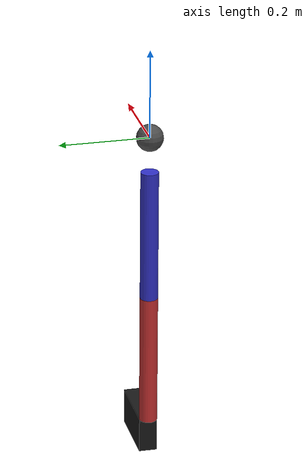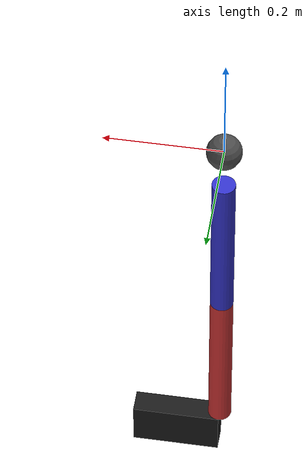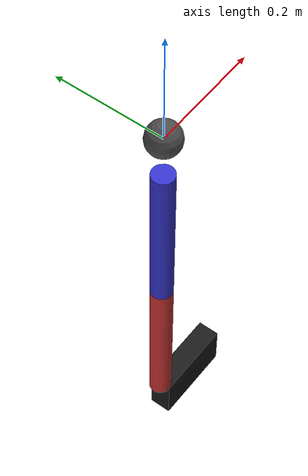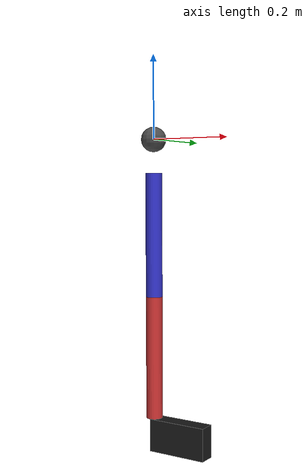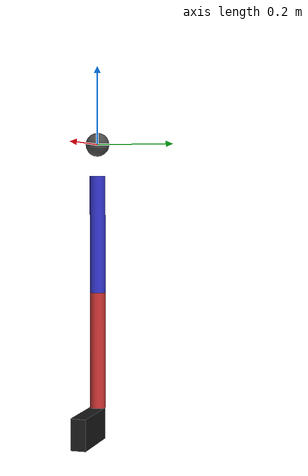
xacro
<?xml version="1.0" ?>
<!-- Copyright (c) 2025 Physical AI Course
     License: MIT
     Target: NVIDIA Jetson Orin Nano - ROS 2 Humble
-->
<robot name="humanoid_leg" xmlns:xacro="http://www.ros.org/wiki/xacro">

  <!-- Configurable parameters for leg -->
  <xacro:arg name="leg_side" default="right"/>

  <xacro:property name="leg_side" value="$(arg leg_side)"/>

  <!-- Leg dimensions (in meters) -->
  <xacro:property name="hip_length" value="0.08"/>
  <xacro:property name="thigh_length" value="0.3"/>
  <xacro:property name="calf_length" value="0.3"/>
  <xacro:property name="foot_length" value="0.15"/>
  <xacro:property name="foot_width" value="0.08"/>

  <xacro:property name="segment_radius" value="0.02"/>

  <!-- Mass distribution -->
  <xacro:property name="hip_mass" value="0.5"/>
  <xacro:property name="thigh_mass" value="1.5"/>
  <xacro:property name="calf_mass" value="1.0"/>
  <xacro:property name="foot_mass" value="0.5"/>

  <!-- Hip (pelvis connection point) -->
  <link name="hip_${leg_side}">
    <inertial>
      <mass value="${hip_mass}"/>
      <origin xyz="0 0 0"/>
      <inertia ixx="0.005" ixy="0" ixz="0" iyy="0.005" iyz="0" izz="0.003"/>
    </inertial>
    <visual>
      <origin xyz="0 0 0"/>
      <geometry>
        <sphere radius="${segment_radius * 1.5}"/>
      </geometry>
      <material name="hip_material">
        <color rgba="0.3 0.3 0.3 1.0"/>
      </material>
    </visual>
    <collision>
      <origin xyz="0 0 0"/>
      <geometry>
        <sphere radius="${segment_radius * 1.5}"/>
      </geometry>
    </collision>
  </link>

  <!-- Hip-knee joint -->
  <joint name="hip_knee_${leg_side}" type="revolute">
    <parent link="hip_${leg_side}"/>
    <child link="thigh_${leg_side}"/>
    <origin xyz="0 0 -${hip_length}" rpy="0 0 0"/>
    <axis xyz="1 0 0"/>
    <limit lower="-1.5708" upper="1.5708" effort="50" velocity="2"/>
    <dynamics damping="0.5" friction="0.0"/>
  </joint>

  <!-- Thigh -->
  <link name="thigh_${leg_side}">
    <inertial>
      <mass value="${thigh_mass}"/>
      <origin xyz="0 0 -${thigh_length/2}"/>
      <inertia ixx="0.02" ixy="0" ixz="0" iyy="0.02" iyz="0" izz="0.002"/>
    </inertial>
    <visual>
      <origin xyz="0 0 -${thigh_length/2}"/>
      <geometry>
        <cylinder radius="${segment_radius}" length="${thigh_length}"/>
      </geometry>
      <material name="thigh_material">
        <color rgba="0.2 0.2 0.8 1.0"/>
      </material>
    </visual>
    <collision>
      <origin xyz="0 0 -${thigh_length/2}"/>
      <geometry>
        <cylinder radius="${segment_radius}" length="${thigh_length}"/>
      </geometry>
    </collision>
  </link>

  <!-- Knee joint -->
  <joint name="knee_ankle_${leg_side}" type="revolute">
    <parent link="thigh_${leg_side}"/>
    <child link="calf_${leg_side}"/>
    <origin xyz="0 0 -${thigh_length}" rpy="0 0 0"/>
    <axis xyz="1 0 0"/>
    <limit lower="0" upper="2.5" effort="50" velocity="2"/>
    <dynamics damping="0.5" friction="0.0"/>
  </joint>

  <!-- Calf -->
  <link name="calf_${leg_side}">
    <inertial>
      <mass value="${calf_mass}"/>
      <origin xyz="0 0 -${calf_length/2}"/>
      <inertia ixx="0.015" ixy="0" ixz="0" iyy="0.015" iyz="0" izz="0.001"/>
    </inertial>
    <visual>
      <origin xyz="0 0 -${calf_length/2}"/>
      <geometry>
        <cylinder radius="${segment_radius}" length="${calf_length}"/>
      </geometry>
      <material name="calf_material">
        <color rgba="0.8 0.2 0.2 1.0"/>
      </material>
    </visual>
    <collision>
      <origin xyz="0 0 -${calf_length/2}"/>
      <geometry>
        <cylinder radius="${segment_radius}" length="${calf_length}"/>
      </geometry>
    </collision>
  </link>

  <!-- Ankle joint -->
  <joint name="ankle_foot_${leg_side}" type="revolute">
    <parent link="calf_${leg_side}"/>
    <child link="foot_${leg_side}"/>
    <origin xyz="0 0 -${calf_length}" rpy="0 0 0"/>
    <axis xyz="1 0 0"/>
    <limit lower="-0.7854" upper="0.7854" effort="20" velocity="1"/>
    <dynamics damping="0.3" friction="0.0"/>
  </joint>

  <!-- Foot (contact with ground) -->
  <link name="foot_${leg_side}">
    <inertial>
      <mass value="${foot_mass}"/>
      <origin xyz="${foot_length/2} 0 -${foot_width/2}"/>
      <inertia ixx="0.005" ixy="0" ixz="0" iyy="0.005" iyz="0" izz="0.003"/>
    </inertial>
    <visual>
      <origin xyz="${foot_length/2} 0 -${foot_width/2}"/>
      <geometry>
        <box size="${foot_length} 0.04 ${foot_width}"/>
      </geometry>
      <material name="foot_material">
        <color rgba="0.1 0.1 0.1 1.0"/>
      </material>
    </visual>
    <collision>
      <origin xyz="${foot_length/2} 0 -${foot_width/2}"/>
      <geometry>
        <box size="${foot_length} 0.04 ${foot_width}"/>
      </geometry>
    </collision>
  </link>

</robot>
